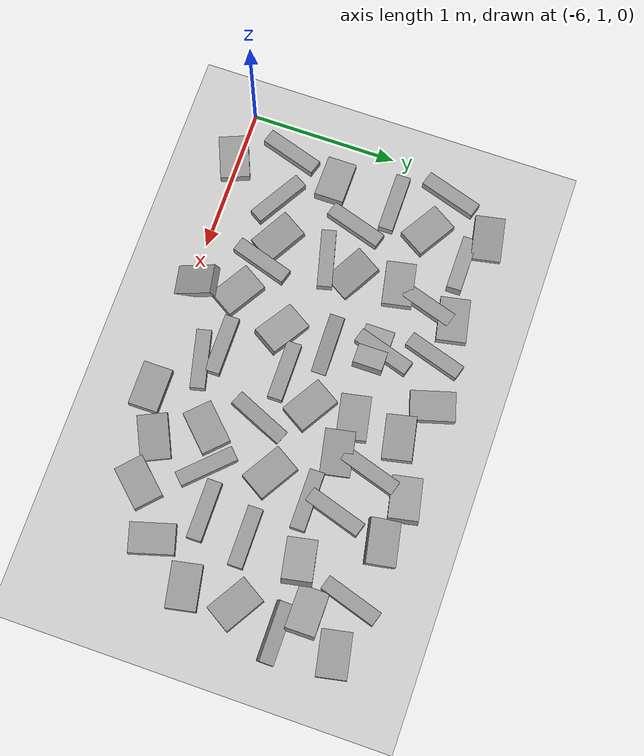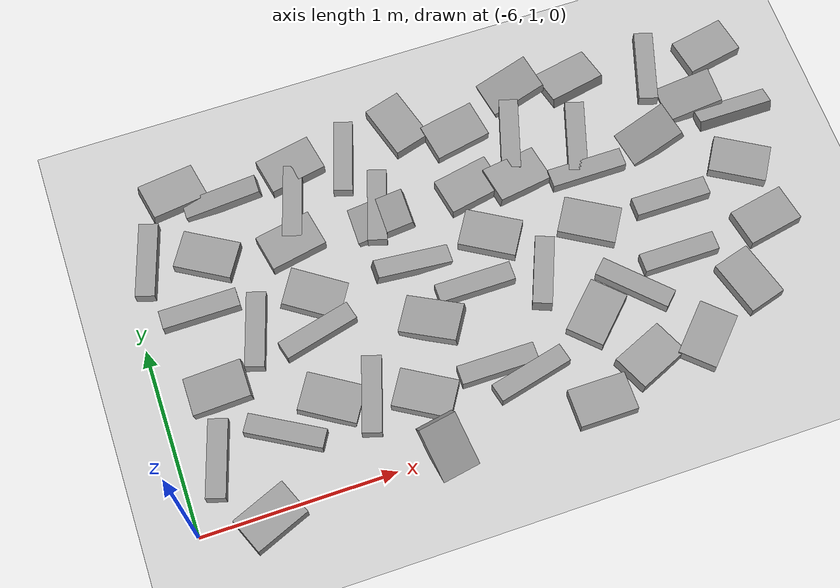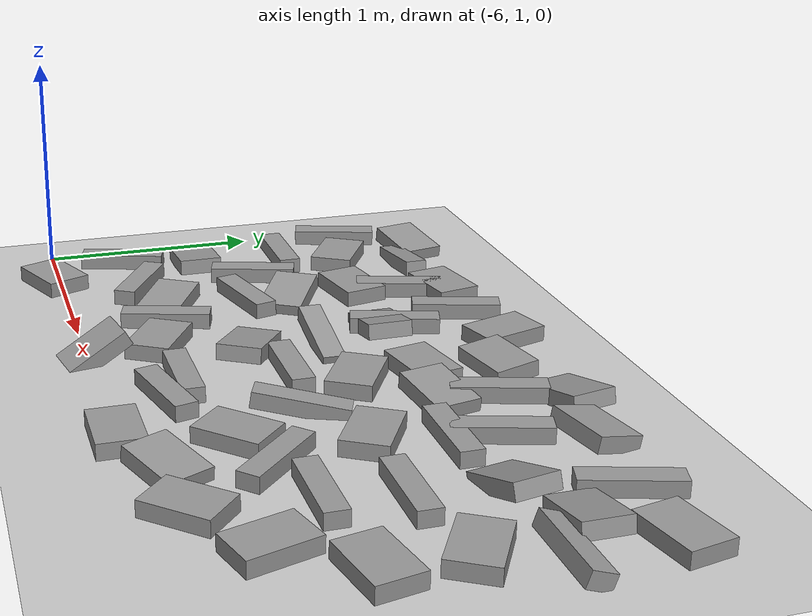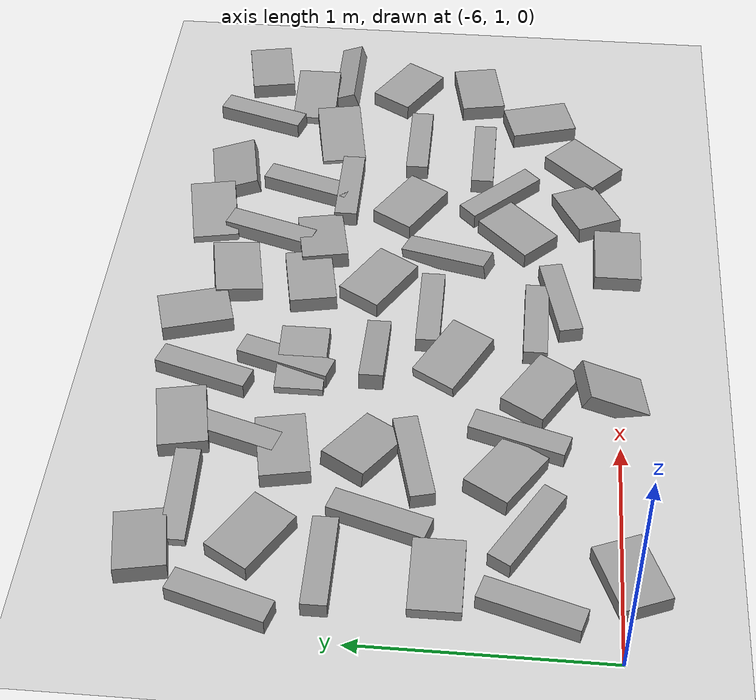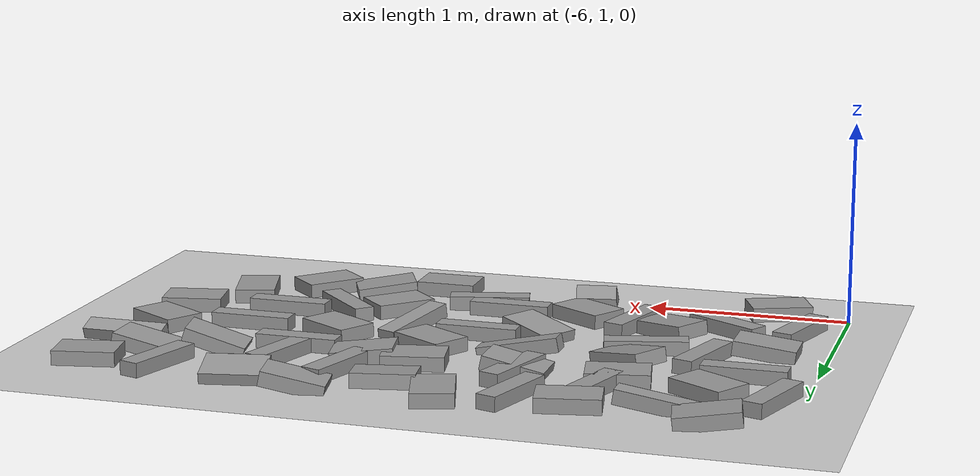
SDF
<sdf version="1.7">
 <world name="default">
  <model name="ground_plane">
   <static>1</static>
   <link name="link">
    <collision name="collision">
     <geometry><plane><normal>0 0 1</normal><size>100 100</size></plane></geometry>
     <surface><friction><ode><mu>200</mu><mu2>200</mu2></ode></friction></surface>
    </collision>
    <visual name="visual">
     <cast_shadows>0</cast_shadows>
     <geometry><plane><normal>0 0 1</normal><size>100 100</size></plane></geometry>
     <material>
      <script><uri>file://media/materials/scripts/gazebo.material</uri><name>Gazebo/Grey</name></script>
     </material>
    </visual>
   </link>
  </model>
  <model name="box_0.3_0.2_0.1">
   <pose>-3.01255 1.36536 0 0 -0 1.85347</pose>
   <link name="Stairs_9">
    <visual name="Stairs_9_Visual_0">
     <pose>0 0 0.035 0 -0 0</pose>
     <geometry><box><size>0.3 0.2 0.07</size></box></geometry>
     <material>
      <script><uri>file://media/materials/scripts/gazebo.material</uri><name>Gazebo/Grey</name></script>
      <ambient>1 1 1 1</ambient>
     </material>
     <meta><layer>0</layer></meta>
    </visual>
    <collision name="Stairs_9_Collision_0">
     <geometry><box><size>0.3 0.2 0.07</size></box></geometry>
     <pose>0 0 0.035 0 -0 0</pose>
     <surface><friction><ode><mu>200</mu><mu2>200</mu2></ode></friction></surface>
    </collision>
   </link>
   <static>1</static>
  </model>
  <model name="box_0.4_0.1_0.07_1">
   <pose>-4.22701 1.2491 0 0 -0 0.237517</pose>
   <link name="Stairs_14">
    <visual name="Stairs_14_Visual_0">
     <pose>0 0 0.035 0 -0 0</pose>
     <geometry><box><size>0.4 0.1 0.07</size></box></geometry>
     <material>
      <script><uri>file://media/materials/scripts/gazebo.material</uri><name>Gazebo/Grey</name></script>
      <ambient>1 1 1 1</ambient>
     </material>
     <meta><layer>0</layer></meta>
    </visual>
    <collision name="Stairs_14_Collision_0">
     <geometry><box><size>0.4 0.1 0.07</size></box></geometry>
     <pose>0 0 0.035 0 -0 0</pose>
     <surface><friction><ode><mu>200</mu><mu2>200</mu2></ode></friction></surface>
    </collision>
   </link>
   <static>1</static>
  </model>
  <model name="box_0.4_0.1_0.07_3">
   <pose>-5.15876 1.80575 0 0 -0 0.249675</pose>
   <link name="Stairs_14">
    <visual name="Stairs_14_Visual_0">
     <pose>0 0 0.035 0 -0 0</pose>
     <geometry><box><size>0.4 0.1 0.07</size></box></geometry>
     <material>
      <script><uri>file://media/materials/scripts/gazebo.material</uri><name>Gazebo/Grey</name></script>
      <ambient>1 1 1 1</ambient>
     </material>
     <meta><layer>0</layer></meta>
    </visual>
    <collision name="Stairs_14_Collision_0">
     <geometry><box><size>0.4 0.1 0.07</size></box></geometry>
     <pose>0 0 0.035 0 -0 0</pose>
     <surface><friction><ode><mu>200</mu><mu2>200</mu2></ode></friction></surface>
    </collision>
   </link>
   <static>1</static>
  </model>
  <model name="box_0.3_0.2_0.1_8">
   <pose>-4.59337 1.6807 0 -0 -0.139114 -0.545678</pose>
   <link name="Stairs_9">
    <visual name="Stairs_9_Visual_0">
     <pose>0 0 0.035 0 -0 0</pose>
     <geometry><box><size>0.3 0.2 0.07</size></box></geometry>
     <material>
      <script><uri>file://media/materials/scripts/gazebo.material</uri><name>Gazebo/Grey</name></script>
      <ambient>1 1 1 1</ambient>
     </material>
     <meta><layer>0</layer></meta>
    </visual>
    <collision name="Stairs_9_Collision_0">
     <geometry><box><size>0.3 0.2 0.07</size></box></geometry>
     <pose>0 0 0.035 0 -0 0</pose>
     <surface><friction><ode><mu>200</mu><mu2>200</mu2></ode></friction></surface>
    </collision>
   </link>
   <static>1</static>
  </model>
  <model name="box_0.3_0.2_0.1_9">
   <pose>-2.79379 1.66334 0 0 -0 0.193818</pose>
   <link name="Stairs_9">
    <visual name="Stairs_9_Visual_0">
     <pose>0 0 0.035 0 -0 0</pose>
     <geometry><box><size>0.3 0.2 0.07</size></box></geometry>
     <material>
      <script><uri>file://media/materials/scripts/gazebo.material</uri><name>Gazebo/Grey</name></script>
      <ambient>1 1 1 1</ambient>
     </material>
     <meta><layer>0</layer></meta>
    </visual>
    <collision name="Stairs_9_Collision_0">
     <geometry><box><size>0.3 0.2 0.07</size></box></geometry>
     <pose>0 0 0.035 0 -0 0</pose>
     <surface><friction><ode><mu>200</mu><mu2>200</mu2></ode></friction></surface>
    </collision>
   </link>
   <static>1</static>
  </model>
  <model name="box_0.4_0.1_0.07_12">
   <pose>-3.56494 1.53175 0 0 0 -0.796152</pose>
   <link name="Stairs_14">
    <visual name="Stairs_14_Visual_0">
     <pose>0 0 0.035 0 -0 0</pose>
     <geometry><box><size>0.4 0.1 0.07</size></box></geometry>
     <material>
      <script><uri>file://media/materials/scripts/gazebo.material</uri><name>Gazebo/Grey</name></script>
      <ambient>1 1 1 1</ambient>
     </material>
     <meta><layer>0</layer></meta>
    </visual>
    <collision name="Stairs_14_Collision_0">
     <geometry><box><size>0.4 0.1 0.07</size></box></geometry>
     <pose>0 0 0.035 0 -0 0</pose>
     <surface><friction><ode><mu>200</mu><mu2>200</mu2></ode></friction></surface>
    </collision>
   </link>
   <static>1</static>
  </model>
  <model name="box_0.3_0.2_0.1_15">
   <pose>-3.64159 1.14014 0 0 0.114836 0.429416</pose>
   <link name="Stairs_9">
    <visual name="Stairs_9_Visual_0">
     <pose>0 0 0.035 0 -0 0</pose>
     <geometry><box><size>0.3 0.2 0.07</size></box></geometry>
     <material>
      <script><uri>file://media/materials/scripts/gazebo.material</uri><name>Gazebo/Grey</name></script>
      <ambient>1 1 1 1</ambient>
     </material>
     <meta><layer>0</layer></meta>
    </visual>
    <collision name="Stairs_9_Collision_0">
     <geometry><box><size>0.3 0.2 0.07</size></box></geometry>
     <pose>0 0 0.035 0 -0 0</pose>
     <surface><friction><ode><mu>200</mu><mu2>200</mu2></ode></friction></surface>
    </collision>
   </link>
   <static>1</static>
  </model>
  <model name="box_0.4_0.1_0.07_19">
   <pose>-5.45893 1.35645 0 0 0 -0.532767</pose>
   <link name="Stairs_14">
    <visual name="Stairs_14_Visual_0">
     <pose>0 0 0.035 0 -0 0</pose>
     <geometry><box><size>0.4 0.1 0.07</size></box></geometry>
     <material>
      <script><uri>file://media/materials/scripts/gazebo.material</uri><name>Gazebo/Grey</name></script>
      <ambient>1 1 1 1</ambient>
     </material>
     <meta><layer>0</layer></meta>
    </visual>
    <collision name="Stairs_14_Collision_0">
     <geometry><box><size>0.4 0.1 0.07</size></box></geometry>
     <pose>0 0 0.035 0 -0 0</pose>
     <surface><friction><ode><mu>200</mu><mu2>200</mu2></ode></friction></surface>
    </collision>
   </link>
   <static>1</static>
  </model>
  <model name="box_0.3_0.2_0.1_21">
   <pose>-4.73627 1.04564 0 -0 0.500671 -1.39294</pose>
   <link name="Stairs_9">
    <visual name="Stairs_9_Visual_0">
     <pose>0 0 0.035 0 -0 0</pose>
     <geometry><box><size>0.3 0.2 0.07</size></box></geometry>
     <material>
      <script><uri>file://media/materials/scripts/gazebo.material</uri><name>Gazebo/Grey</name></script>
      <ambient>1 1 1 1</ambient>
     </material>
     <meta><layer>0</layer></meta>
    </visual>
    <collision name="Stairs_9_Collision_0">
     <geometry><box><size>0.3 0.2 0.07</size></box></geometry>
     <pose>0 0 0.035 0 -0 0</pose>
     <surface><friction><ode><mu>200</mu><mu2>200</mu2></ode></friction></surface>
    </collision>
   </link>
   <static>1</static>
  </model>
  <model name="box_0.4_0.1_0.07_20">
   <pose>-3.98209 1.73954 0 0 0.150582 1.18314</pose>
   <link name="Stairs_14">
    <visual name="Stairs_14_Visual_0">
     <pose>0 0 0.035 0 -0 0</pose>
     <geometry><box><size>0.4 0.1 0.07</size></box></geometry>
     <material>
      <script><uri>file://media/materials/scripts/gazebo.material</uri><name>Gazebo/Grey</name></script>
      <ambient>1 1 1 1</ambient>
     </material>
     <meta><layer>0</layer></meta>
    </visual>
    <collision name="Stairs_14_Collision_0">
     <geometry><box><size>0.4 0.1 0.07</size></box></geometry>
     <pose>0 0 0.035 0 -0 0</pose>
     <surface><friction><ode><mu>200</mu><mu2>200</mu2></ode></friction></surface>
    </collision>
   </link>
   <static>1</static>
  </model>
  <model name="box_0.3_0.2_0.1_22">
   <pose>-5.70698 1.67913 0 0 -0.108326 0</pose>
   <link name="Stairs_9">
    <visual name="Stairs_9_Visual_0">
     <pose>0 0 0.035 0 -0 0</pose>
     <geometry><box><size>0.3 0.2 0.07</size></box></geometry>
     <material>
      <script><uri>file://media/materials/scripts/gazebo.material</uri><name>Gazebo/Grey</name></script>
      <ambient>1 1 1 1</ambient>
     </material>
     <meta><layer>0</layer></meta>
    </visual>
    <collision name="Stairs_9_Collision_0">
     <geometry><box><size>0.3 0.2 0.07</size></box></geometry>
     <pose>0 0 0.035 0 -0 0</pose>
     <surface><friction><ode><mu>200</mu><mu2>200</mu2></ode></friction></surface>
    </collision>
   </link>
   <static>1</static>
  </model>
  <model name="box_0.3_0.2_0.1_23">
   <pose>-5.64621 0.971865 0 0 -0 0.388929</pose>
   <link name="Stairs_9">
    <visual name="Stairs_9_Visual_0">
     <pose>0 0 0.035 0 -0 0</pose>
     <geometry><box><size>0.3 0.2 0.07</size></box></geometry>
     <material>
      <script><uri>file://media/materials/scripts/gazebo.material</uri><name>Gazebo/Grey</name></script>
      <ambient>1 1 1 1</ambient>
     </material>
     <meta><layer>0</layer></meta>
    </visual>
    <collision name="Stairs_9_Collision_0">
     <geometry><box><size>0.3 0.2 0.07</size></box></geometry>
     <pose>0 0 0.035 0 -0 0</pose>
     <surface><friction><ode><mu>200</mu><mu2>200</mu2></ode></friction></surface>
    </collision>
   </link>
   <static>1</static>
  </model>
  <model name="box_0.4_0.1_0.07_25">
   <pose>-3.29164 1.61754 0 0 -0 0</pose>
   <link name="Stairs_14">
    <visual name="Stairs_14_Visual_0">
     <pose>0 0 0.035 0 -0 0</pose>
     <geometry><box><size>0.4 0.1 0.07</size></box></geometry>
     <material>
      <script><uri>file://media/materials/scripts/gazebo.material</uri><name>Gazebo/Grey</name></script>
      <ambient>1 1 1 1</ambient>
     </material>
     <meta><layer>0</layer></meta>
    </visual>
    <collision name="Stairs_14_Collision_0">
     <geometry><box><size>0.4 0.1 0.07</size></box></geometry>
     <pose>0 0 0.035 0 -0 0</pose>
     <surface><friction><ode><mu>200</mu><mu2>200</mu2></ode></friction></surface>
    </collision>
   </link>
   <static>1</static>
  </model>
  <model name="box_0.4_0.1_0.07_28">
   <pose>-5.00471 1.39941 0 0 -0 1.2714</pose>
   <link name="Stairs_14">
    <visual name="Stairs_14_Visual_0">
     <pose>0 0 0.035 0 -0 0</pose>
     <geometry><box><size>0.4 0.1 0.07</size></box></geometry>
     <material>
      <script><uri>file://media/materials/scripts/gazebo.material</uri><name>Gazebo/Grey</name></script>
      <ambient>1 1 1 1</ambient>
     </material>
     <meta><layer>0</layer></meta>
    </visual>
    <collision name="Stairs_14_Collision_0">
     <geometry><box><size>0.4 0.1 0.07</size></box></geometry>
     <pose>0 0 0.035 0 -0 0</pose>
     <surface><friction><ode><mu>200</mu><mu2>200</mu2></ode></friction></surface>
    </collision>
   </link>
   <static>1</static>
  </model>
  <model name="box_0.3_0.2_0.1_32">
   <pose>-3.94269 1.00447 0 0 -0 0</pose>
   <link name="Stairs_9">
    <visual name="Stairs_9_Visual_0">
     <pose>0 0 0.035 0 -0 0</pose>
     <geometry><box><size>0.3 0.2 0.07</size></box></geometry>
     <material>
      <script><uri>file://media/materials/scripts/gazebo.material</uri><name>Gazebo/Grey</name></script>
      <ambient>1 1 1 1</ambient>
     </material>
     <meta><layer>0</layer></meta>
    </visual>
    <collision name="Stairs_9_Collision_0">
     <geometry><box><size>0.3 0.2 0.07</size></box></geometry>
     <pose>0 0 0.035 0 -0 0</pose>
     <surface><friction><ode><mu>200</mu><mu2>200</mu2></ode></friction></surface>
    </collision>
   </link>
   <static>1</static>
  </model>
  <model name="box_0.3_0.2_0.1_40">
   <pose>-3.80623 1.44414 0 0 -0 0.786502</pose>
   <link name="Stairs_9">
    <visual name="Stairs_9_Visual_0">
     <pose>0 0 0.035 0 -0 0</pose>
     <geometry><box><size>0.3 0.2 0.07</size></box></geometry>
     <material>
      <script><uri>file://media/materials/scripts/gazebo.material</uri><name>Gazebo/Grey</name></script>
      <ambient>1 1 1 1</ambient>
     </material>
     <meta><layer>0</layer></meta>
    </visual>
    <collision name="Stairs_9_Collision_0">
     <geometry><box><size>0.3 0.2 0.07</size></box></geometry>
     <pose>0 0 0.035 0 -0 0</pose>
     <surface><friction><ode><mu>200</mu><mu2>200</mu2></ode></friction></surface>
    </collision>
   </link>
   <static>1</static>
  </model>
  <model name="box_0.3_0.2_0.1_41">
   <pose>-3.32408 1.15403 0 0 -0 0.81582</pose>
   <link name="Stairs_9">
    <visual name="Stairs_9_Visual_0">
     <pose>0 0 0.035 0 -0 0</pose>
     <geometry><box><size>0.3 0.2 0.07</size></box></geometry>
     <material>
      <script><uri>file://media/materials/scripts/gazebo.material</uri><name>Gazebo/Grey</name></script>
      <ambient>1 1 1 1</ambient>
     </material>
     <meta><layer>0</layer></meta>
    </visual>
    <collision name="Stairs_9_Collision_0">
     <geometry><box><size>0.3 0.2 0.07</size></box></geometry>
     <pose>0 0 0.035 0 -0 0</pose>
     <surface><friction><ode><mu>200</mu><mu2>200</mu2></ode></friction></surface>
    </collision>
   </link>
   <static>1</static>
  </model>
  <model name="box_0.4_0.1_0.07_38">
   <pose>-4.36607 1.34865 0 0 -0 0</pose>
   <link name="Stairs_14">
    <visual name="Stairs_14_Visual_0">
     <pose>0 0 0.035 0 -0 0</pose>
     <geometry><box><size>0.4 0.1 0.07</size></box></geometry>
     <material>
      <script><uri>file://media/materials/scripts/gazebo.material</uri><name>Gazebo/Grey</name></script>
      <ambient>1 1 1 1</ambient>
     </material>
     <meta><layer>0</layer></meta>
    </visual>
    <collision name="Stairs_14_Collision_0">
     <geometry><box><size>0.4 0.1 0.07</size></box></geometry>
     <pose>0 0 0.035 0 -0 0</pose>
     <surface><friction><ode><mu>200</mu><mu2>200</mu2></ode></friction></surface>
    </collision>
   </link>
   <static>1</static>
  </model>
  <model name="box_0.4_0.1_0.07_41">
   <pose>-3.21523 1.9236 0 0 -0 0</pose>
   <link name="Stairs_14">
    <visual name="Stairs_14_Visual_0">
     <pose>0 0 0.035 0 -0 0</pose>
     <geometry><box><size>0.4 0.1 0.07</size></box></geometry>
     <material>
      <script><uri>file://media/materials/scripts/gazebo.material</uri><name>Gazebo/Grey</name></script>
      <ambient>1 1 1 1</ambient>
     </material>
     <meta><layer>0</layer></meta>
    </visual>
    <collision name="Stairs_14_Collision_0">
     <geometry><box><size>0.4 0.1 0.07</size></box></geometry>
     <pose>0 0 0.035 0 -0 0</pose>
     <surface><friction><ode><mu>200</mu><mu2>200</mu2></ode></friction></surface>
    </collision>
   </link>
   <static>1</static>
  </model>
  <model name="box_0.4_0.1_0.07_42">
   <pose>-4.3306 1.79701 0 0 -0 0</pose>
   <link name="Stairs_14">
    <visual name="Stairs_14_Visual_0">
     <pose>0 0 0.035 0 -0 0</pose>
     <geometry><box><size>0.4 0.1 0.07</size></box></geometry>
     <material>
      <script><uri>file://media/materials/scripts/gazebo.material</uri><name>Gazebo/Grey</name></script>
      <ambient>1 1 1 1</ambient>
     </material>
     <meta><layer>0</layer></meta>
    </visual>
    <collision name="Stairs_14_Collision_0">
     <geometry><box><size>0.4 0.1 0.07</size></box></geometry>
     <pose>0 0 0.035 0 -0 0</pose>
     <surface><friction><ode><mu>200</mu><mu2>200</mu2></ode></friction></surface>
    </collision>
   </link>
   <static>1</static>
  </model>
  <model name="box_0.3_0.2_0.1_8_clone">
   <pose>-4.75404 1.31901 0 0 0 -0.545678</pose>
   <link name="Stairs_9">
    <visual name="Stairs_9_Visual_0">
     <pose>0 0 0.035 0 -0 0</pose>
     <geometry><box><size>0.3 0.2 0.07</size></box></geometry>
     <material>
      <script><uri>file://media/materials/scripts/gazebo.material</uri><name>Gazebo/Grey</name></script>
      <ambient>1 1 1 1</ambient>
     </material>
     <meta><layer>0</layer></meta>
    </visual>
    <collision name="Stairs_9_Collision_0">
     <geometry><box><size>0.3 0.2 0.07</size></box></geometry>
     <pose>0 0 0.035 0 -0 0</pose>
     <surface><friction><ode><mu>200</mu><mu2>200</mu2></ode></friction></surface>
    </collision>
   </link>
   <static>1</static>
  </model>
  <model name="box_0.3_0.2_0.1_9_clone_0">
   <pose>-2.70235 2.69599 0 0 -0 0.193818</pose>
   <link name="Stairs_9">
    <visual name="Stairs_9_Visual_0">
     <pose>0 0 0.035 0 -0 0</pose>
     <geometry><box><size>0.3 0.2 0.07</size></box></geometry>
     <material>
      <script><uri>file://media/materials/scripts/gazebo.material</uri><name>Gazebo/Grey</name></script>
      <ambient>1 1 1 1</ambient>
     </material>
     <meta><layer>0</layer></meta>
    </visual>
    <collision name="Stairs_9_Collision_0">
     <geometry><box><size>0.3 0.2 0.07</size></box></geometry>
     <pose>0 0 0.035 0 -0 0</pose>
     <surface><friction><ode><mu>200</mu><mu2>200</mu2></ode></friction></surface>
    </collision>
   </link>
   <static>1</static>
  </model>
  <model name="box_0.3_0.2_0.1_9_clone_1">
   <pose>-3.17232 2.30182 0 0 -0.321007 0.193818</pose>
   <link name="Stairs_9">
    <visual name="Stairs_9_Visual_0">
     <pose>0 0 0.035 0 -0 0</pose>
     <geometry><box><size>0.3 0.2 0.07</size></box></geometry>
     <material>
      <script><uri>file://media/materials/scripts/gazebo.material</uri><name>Gazebo/Grey</name></script>
      <ambient>1 1 1 1</ambient>
     </material>
     <meta><layer>0</layer></meta>
    </visual>
    <collision name="Stairs_9_Collision_0">
     <geometry><box><size>0.3 0.2 0.07</size></box></geometry>
     <pose>0 0 0.035 0 -0 0</pose>
     <surface><friction><ode><mu>200</mu><mu2>200</mu2></ode></friction></surface>
    </collision>
   </link>
   <static>1</static>
  </model>
  <model name="box_0.3_0.2_0.1_9_clone_2">
   <pose>-3.46635 2.75271 0 -0.201979 -0 0.193818</pose>
   <link name="Stairs_9">
    <visual name="Stairs_9_Visual_0">
     <pose>0 0 0.035 0 -0 0</pose>
     <geometry><box><size>0.3 0.2 0.07</size></box></geometry>
     <material>
      <script><uri>file://media/materials/scripts/gazebo.material</uri><name>Gazebo/Grey</name></script>
      <ambient>1 1 1 1</ambient>
     </material>
     <meta><layer>0</layer></meta>
    </visual>
    <collision name="Stairs_9_Collision_0">
     <geometry><box><size>0.3 0.2 0.07</size></box></geometry>
     <pose>0 0 0.035 0 -0 0</pose>
     <surface><friction><ode><mu>200</mu><mu2>200</mu2></ode></friction></surface>
    </collision>
   </link>
   <static>1</static>
  </model>
  <model name="box_0.3_0.2_0.1_9_clone_3">
   <pose>-3.77104 2.81261 0 0 -0.21249 0.193818</pose>
   <link name="Stairs_9">
    <visual name="Stairs_9_Visual_0">
     <pose>0 0 0.035 0 -0 0</pose>
     <geometry><box><size>0.3 0.2 0.07</size></box></geometry>
     <material>
      <script><uri>file://media/materials/scripts/gazebo.material</uri><name>Gazebo/Grey</name></script>
      <ambient>1 1 1 1</ambient>
     </material>
     <meta><layer>0</layer></meta>
    </visual>
    <collision name="Stairs_9_Collision_0">
     <geometry><box><size>0.3 0.2 0.07</size></box></geometry>
     <pose>0 0 0.035 0 -0 0</pose>
     <surface><friction><ode><mu>200</mu><mu2>200</mu2></ode></friction></surface>
    </collision>
   </link>
   <static>1</static>
  </model>
  <model name="box_0.3_0.2_0.1_9_clone_4">
   <pose>-3.93072 2.30176 0 -0 0.10704 0.193818</pose>
   <link name="Stairs_9">
    <visual name="Stairs_9_Visual_0">
     <pose>0 0 0.035 0 -0 0</pose>
     <geometry><box><size>0.3 0.2 0.07</size></box></geometry>
     <material>
      <script><uri>file://media/materials/scripts/gazebo.material</uri><name>Gazebo/Grey</name></script>
      <ambient>1 1 1 1</ambient>
     </material>
     <meta><layer>0</layer></meta>
    </visual>
    <collision name="Stairs_9_Collision_0">
     <geometry><box><size>0.3 0.2 0.07</size></box></geometry>
     <pose>0 0 0.035 0 -0 0</pose>
     <surface><friction><ode><mu>200</mu><mu2>200</mu2></ode></friction></surface>
    </collision>
   </link>
   <static>1</static>
  </model>
  <model name="box_0.3_0.2_0.1_9_clone_5">
   <pose>-4.18129 2.3259 0 0 -0 0.193818</pose>
   <link name="Stairs_9">
    <visual name="Stairs_9_Visual_0">
     <pose>0 0 0.035 0 -0 0</pose>
     <geometry><box><size>0.3 0.2 0.07</size></box></geometry>
     <material>
      <script><uri>file://media/materials/scripts/gazebo.material</uri><name>Gazebo/Grey</name></script>
      <ambient>1 1 1 1</ambient>
     </material>
     <meta><layer>0</layer></meta>
    </visual>
    <collision name="Stairs_9_Collision_0">
     <geometry><box><size>0.3 0.2 0.07</size></box></geometry>
     <pose>0 0 0.035 0 -0 0</pose>
     <surface><friction><ode><mu>200</mu><mu2>200</mu2></ode></friction></surface>
    </collision>
   </link>
   <static>1</static>
  </model>
  <model name="box_0.3_0.2_0.1_9_clone_6">
   <pose>-4.15008 2.65356 0 0.084754 0 0.193818</pose>
   <link name="Stairs_9">
    <visual name="Stairs_9_Visual_0">
     <pose>0 0 0.035 0 -0 0</pose>
     <geometry><box><size>0.3 0.2 0.07</size></box></geometry>
     <material>
      <script><uri>file://media/materials/scripts/gazebo.material</uri><name>Gazebo/Grey</name></script>
      <ambient>1 1 1 1</ambient>
     </material>
     <meta><layer>0</layer></meta>
    </visual>
    <collision name="Stairs_9_Collision_0">
     <geometry><box><size>0.3 0.2 0.07</size></box></geometry>
     <pose>0 0 0.035 0 -0 0</pose>
     <surface><friction><ode><mu>200</mu><mu2>200</mu2></ode></friction></surface>
    </collision>
   </link>
   <static>1</static>
  </model>
  <model name="box_0.3_0.2_0.1_9_clone_7">
   <pose>-5.14536 2.32027 0 0 -0 0.193818</pose>
   <link name="Stairs_9">
    <visual name="Stairs_9_Visual_0">
     <pose>0 0 0.035 0 -0 0</pose>
     <geometry><box><size>0.3 0.2 0.07</size></box></geometry>
     <material>
      <script><uri>file://media/materials/scripts/gazebo.material</uri><name>Gazebo/Grey</name></script>
      <ambient>1 1 1 1</ambient>
     </material>
     <meta><layer>0</layer></meta>
    </visual>
    <collision name="Stairs_9_Collision_0">
     <geometry><box><size>0.3 0.2 0.07</size></box></geometry>
     <pose>0 0 0.035 0 -0 0</pose>
     <surface><friction><ode><mu>200</mu><mu2>200</mu2></ode></friction></surface>
    </collision>
   </link>
   <static>1</static>
  </model>
  <model name="box_0.3_0.2_0.1_9_clone_8">
   <pose>-5.65117 2.78452 0 0 0.127228 0.193818</pose>
   <link name="Stairs_9">
    <visual name="Stairs_9_Visual_0">
     <pose>0 0 0.035 0 -0 0</pose>
     <geometry><box><size>0.3 0.2 0.07</size></box></geometry>
     <material>
      <script><uri>file://media/materials/scripts/gazebo.material</uri><name>Gazebo/Grey</name></script>
      <ambient>1 1 1 1</ambient>
     </material>
     <meta><layer>0</layer></meta>
    </visual>
    <collision name="Stairs_9_Collision_0">
     <geometry><box><size>0.3 0.2 0.07</size></box></geometry>
     <pose>0 0 0.035 0 -0 0</pose>
     <surface><friction><ode><mu>200</mu><mu2>200</mu2></ode></friction></surface>
    </collision>
   </link>
   <static>1</static>
  </model>
  <model name="box_0.3_0.2_0.1_9_clone_9">
   <pose>-5.0247 2.73794 0 0 -0 0.193818</pose>
   <link name="Stairs_9">
    <visual name="Stairs_9_Visual_0">
     <pose>0 0 0.035 0 -0 0</pose>
     <geometry><box><size>0.3 0.2 0.07</size></box></geometry>
     <material>
      <script><uri>file://media/materials/scripts/gazebo.material</uri><name>Gazebo/Grey</name></script>
      <ambient>1 1 1 1</ambient>
     </material>
     <meta><layer>0</layer></meta>
    </visual>
    <collision name="Stairs_9_Collision_0">
     <geometry><box><size>0.3 0.2 0.07</size></box></geometry>
     <pose>0 0 0.035 0 -0 0</pose>
     <surface><friction><ode><mu>200</mu><mu2>200</mu2></ode></friction></surface>
    </collision>
   </link>
   <static>1</static>
  </model>
  <model name="box_0.4_0.1_0.07_28_clone">
   <pose>-4.66639 2.37013 0 0 -0 1.2714</pose>
   <link name="Stairs_14">
    <visual name="Stairs_14_Visual_0">
     <pose>0 0 0.035 0 -0 0</pose>
     <geometry><box><size>0.4 0.1 0.07</size></box></geometry>
     <material>
      <script><uri>file://media/materials/scripts/gazebo.material</uri><name>Gazebo/Grey</name></script>
      <ambient>1 1 1 1</ambient>
     </material>
     <meta><layer>0</layer></meta>
    </visual>
    <collision name="Stairs_14_Collision_0">
     <geometry><box><size>0.4 0.1 0.07</size></box></geometry>
     <pose>0 0 0.035 0 -0 0</pose>
     <surface><friction><ode><mu>200</mu><mu2>200</mu2></ode></friction></surface>
    </collision>
   </link>
   <static>1</static>
  </model>
  <model name="box_0.4_0.1_0.07_28_clone_0">
   <pose>-4.74921 2.69609 0 0 -0 1.2714</pose>
   <link name="Stairs_14">
    <visual name="Stairs_14_Visual_0">
     <pose>0 0 0.035 0 -0 0</pose>
     <geometry><box><size>0.4 0.1 0.07</size></box></geometry>
     <material>
      <script><uri>file://media/materials/scripts/gazebo.material</uri><name>Gazebo/Grey</name></script>
      <ambient>1 1 1 1</ambient>
     </material>
     <meta><layer>0</layer></meta>
    </visual>
    <collision name="Stairs_14_Collision_0">
     <geometry><box><size>0.4 0.1 0.07</size></box></geometry>
     <pose>0 0 0.035 0 -0 0</pose>
     <surface><friction><ode><mu>200</mu><mu2>200</mu2></ode></friction></surface>
    </collision>
   </link>
   <static>1</static>
  </model>
  <model name="box_0.4_0.1_0.07_28_clone_1">
   <pose>-3.5532 2.41158 0 0 -0 1.2714</pose>
   <link name="Stairs_14">
    <visual name="Stairs_14_Visual_0">
     <pose>0 0 0.035 0 -0 0</pose>
     <geometry><box><size>0.4 0.1 0.07</size></box></geometry>
     <material>
      <script><uri>file://media/materials/scripts/gazebo.material</uri><name>Gazebo/Grey</name></script>
      <ambient>1 1 1 1</ambient>
     </material>
     <meta><layer>0</layer></meta>
    </visual>
    <collision name="Stairs_14_Collision_0">
     <geometry><box><size>0.4 0.1 0.07</size></box></geometry>
     <pose>0 0 0.035 0 -0 0</pose>
     <surface><friction><ode><mu>200</mu><mu2>200</mu2></ode></friction></surface>
    </collision>
   </link>
   <static>1</static>
  </model>
  <model name="box_0.4_0.1_0.07_28_clone_2">
   <pose>-3.05202 2.68853 0 0 -0 1.2714</pose>
   <link name="Stairs_14">
    <visual name="Stairs_14_Visual_0">
     <pose>0 0 0.035 0 -0 0</pose>
     <geometry><box><size>0.4 0.1 0.07</size></box></geometry>
     <material>
      <script><uri>file://media/materials/scripts/gazebo.material</uri><name>Gazebo/Grey</name></script>
      <ambient>1 1 1 1</ambient>
     </material>
     <meta><layer>0</layer></meta>
    </visual>
    <collision name="Stairs_14_Collision_0">
     <geometry><box><size>0.4 0.1 0.07</size></box></geometry>
     <pose>0 0 0.035 0 -0 0</pose>
     <surface><friction><ode><mu>200</mu><mu2>200</mu2></ode></friction></surface>
    </collision>
   </link>
   <static>1</static>
  </model>
  <model name="box_0.4_0.1_0.07_36_clone">
   <pose>-2.70922 2.29202 0 -0.328405 0 0</pose>
   <link name="Stairs_14">
    <visual name="Stairs_14_Visual_0">
     <pose>0 0 0.035 0 -0 0</pose>
     <geometry><box><size>0.4 0.1 0.07</size></box></geometry>
     <material>
      <script><uri>file://media/materials/scripts/gazebo.material</uri><name>Gazebo/Grey</name></script>
      <ambient>1 1 1 1</ambient>
     </material>
     <meta><layer>0</layer></meta>
    </visual>
    <collision name="Stairs_14_Collision_0">
     <geometry><box><size>0.4 0.1 0.07</size></box></geometry>
     <pose>0 0 0.035 0 -0 0</pose>
     <surface><friction><ode><mu>200</mu><mu2>200</mu2></ode></friction></surface>
    </collision>
   </link>
   <static>1</static>
  </model>
  <model name="box_0.4_0.1_0.07_36_clone_1">
   <pose>-3.56785 2.21887 0 0 -0 0</pose>
   <link name="Stairs_14">
    <visual name="Stairs_14_Visual_0">
     <pose>0 0 0.035 0 -0 0</pose>
     <geometry><box><size>0.4 0.1 0.07</size></box></geometry>
     <material>
      <script><uri>file://media/materials/scripts/gazebo.material</uri><name>Gazebo/Grey</name></script>
      <ambient>1 1 1 1</ambient>
     </material>
     <meta><layer>0</layer></meta>
    </visual>
    <collision name="Stairs_14_Collision_0">
     <geometry><box><size>0.4 0.1 0.07</size></box></geometry>
     <pose>0 0 0.035 0 -0 0</pose>
     <surface><friction><ode><mu>200</mu><mu2>200</mu2></ode></friction></surface>
    </collision>
   </link>
   <static>1</static>
  </model>
  <model name="box_0.4_0.1_0.07_36_clone_2">
   <pose>-4.6043 2.00787 0 0 0.205419 0</pose>
   <link name="Stairs_14">
    <visual name="Stairs_14_Visual_0">
     <pose>0 0 0.035 0 -0 0</pose>
     <geometry><box><size>0.4 0.1 0.07</size></box></geometry>
     <material>
      <script><uri>file://media/materials/scripts/gazebo.material</uri><name>Gazebo/Grey</name></script>
      <ambient>1 1 1 1</ambient>
     </material>
     <meta><layer>0</layer></meta>
    </visual>
    <collision name="Stairs_14_Collision_0">
     <geometry><box><size>0.4 0.1 0.07</size></box></geometry>
     <pose>0 0 0.035 0 -0 0</pose>
     <surface><friction><ode><mu>200</mu><mu2>200</mu2></ode></friction></surface>
    </collision>
   </link>
   <static>1</static>
  </model>
  <model name="box_0.4_0.1_0.07_36_clone_3">
   <pose>-5.4091 2.67465 0 0 -0.144292 0</pose>
   <link name="Stairs_14">
    <visual name="Stairs_14_Visual_0">
     <pose>0 0 0.035 0 -0 0</pose>
     <geometry><box><size>0.4 0.1 0.07</size></box></geometry>
     <material>
      <script><uri>file://media/materials/scripts/gazebo.material</uri><name>Gazebo/Grey</name></script>
      <ambient>1 1 1 1</ambient>
     </material>
     <meta><layer>0</layer></meta>
    </visual>
    <collision name="Stairs_14_Collision_0">
     <geometry><box><size>0.4 0.1 0.07</size></box></geometry>
     <pose>0 0 0.035 0 -0 0</pose>
     <surface><friction><ode><mu>200</mu><mu2>200</mu2></ode></friction></surface>
    </collision>
   </link>
   <static>1</static>
  </model>
  <model name="box_0.4_0.1_0.07_36_clone_4">
   <pose>-5.68526 2.1106 0 0 -0 0</pose>
   <link name="Stairs_14">
    <visual name="Stairs_14_Visual_0">
     <pose>0 0 0.035 0 -0 0</pose>
     <geometry><box><size>0.4 0.1 0.07</size></box></geometry>
     <material>
      <script><uri>file://media/materials/scripts/gazebo.material</uri><name>Gazebo/Grey</name></script>
      <ambient>1 1 1 1</ambient>
     </material>
     <meta><layer>0</layer></meta>
    </visual>
    <collision name="Stairs_14_Collision_0">
     <geometry><box><size>0.4 0.1 0.07</size></box></geometry>
     <pose>0 0 0.035 0 -0 0</pose>
     <surface><friction><ode><mu>200</mu><mu2>200</mu2></ode></friction></surface>
    </collision>
   </link>
   <static>1</static>
  </model>
  <model name="box_0.3_0.2_0.1_8_clone_clone">
   <pose>-5.57052 2.38324 0 0 0 -0.545678</pose>
   <link name="Stairs_9">
    <visual name="Stairs_9_Visual_0">
     <pose>0 0 0.035 0 -0 0</pose>
     <geometry><box><size>0.3 0.2 0.07</size></box></geometry>
     <material>
      <script><uri>file://media/materials/scripts/gazebo.material</uri><name>Gazebo/Grey</name></script>
      <ambient>1 1 1 1</ambient>
     </material>
     <meta><layer>0</layer></meta>
    </visual>
    <collision name="Stairs_9_Collision_0">
     <geometry><box><size>0.3 0.2 0.07</size></box></geometry>
     <pose>0 0 0.035 0 -0 0</pose>
     <surface><friction><ode><mu>200</mu><mu2>200</mu2></ode></friction></surface>
    </collision>
   </link>
   <static>1</static>
  </model>
  <model name="box_0.3_0.2_0.1_8_clone_clone_0">
   <pose>-5.12123 2.00559 0 0 0.166537 -0.545678</pose>
   <link name="Stairs_9">
    <visual name="Stairs_9_Visual_0">
     <pose>0 0 0.035 0 -0 0</pose>
     <geometry><box><size>0.3 0.2 0.07</size></box></geometry>
     <material>
      <script><uri>file://media/materials/scripts/gazebo.material</uri><name>Gazebo/Grey</name></script>
      <ambient>1 1 1 1</ambient>
     </material>
     <meta><layer>0</layer></meta>
    </visual>
    <collision name="Stairs_9_Collision_0">
     <geometry><box><size>0.3 0.2 0.07</size></box></geometry>
     <pose>0 0 0.035 0 -0 0</pose>
     <surface><friction><ode><mu>200</mu><mu2>200</mu2></ode></friction></surface>
    </collision>
   </link>
   <static>1</static>
  </model>
  <model name="box_0.3_0.2_0.1_8_clone_clone_1">
   <pose>-5.20016 1.44756 0 0 0.083953 -0.545678</pose>
   <link name="Stairs_9">
    <visual name="Stairs_9_Visual_0">
     <pose>0 0 0.035 0 -0 0</pose>
     <geometry><box><size>0.3 0.2 0.07</size></box></geometry>
     <material>
      <script><uri>file://media/materials/scripts/gazebo.material</uri><name>Gazebo/Grey</name></script>
      <ambient>1 1 1 1</ambient>
     </material>
     <meta><layer>0</layer></meta>
    </visual>
    <collision name="Stairs_9_Collision_0">
     <geometry><box><size>0.3 0.2 0.07</size></box></geometry>
     <pose>0 0 0.035 0 -0 0</pose>
     <surface><friction><ode><mu>200</mu><mu2>200</mu2></ode></friction></surface>
    </collision>
   </link>
   <static>1</static>
  </model>
  <model name="box_0.3_0.2_0.1_8_clone_clone_2">
   <pose>-3.65974 1.93273 0 0 0 -0.545678</pose>
   <link name="Stairs_9">
    <visual name="Stairs_9_Visual_0">
     <pose>0 0 0.035 0 -0 0</pose>
     <geometry><box><size>0.3 0.2 0.07</size></box></geometry>
     <material>
      <script><uri>file://media/materials/scripts/gazebo.material</uri><name>Gazebo/Grey</name></script>
      <ambient>1 1 1 1</ambient>
     </material>
     <meta><layer>0</layer></meta>
    </visual>
    <collision name="Stairs_9_Collision_0">
     <geometry><box><size>0.3 0.2 0.07</size></box></geometry>
     <pose>0 0 0.035 0 -0 0</pose>
     <surface><friction><ode><mu>200</mu><mu2>200</mu2></ode></friction></surface>
    </collision>
   </link>
   <static>1</static>
  </model>
  <model name="box_0.3_0.2_0.1_8_clone_clone_3">
   <pose>-2.7935 2.00782 0 0 0 -0.545678</pose>
   <link name="Stairs_9">
    <visual name="Stairs_9_Visual_0">
     <pose>0 0 0.035 0 -0 0</pose>
     <geometry><box><size>0.3 0.2 0.07</size></box></geometry>
     <material>
      <script><uri>file://media/materials/scripts/gazebo.material</uri><name>Gazebo/Grey</name></script>
      <ambient>1 1 1 1</ambient>
     </material>
     <meta><layer>0</layer></meta>
    </visual>
    <collision name="Stairs_9_Collision_0">
     <geometry><box><size>0.3 0.2 0.07</size></box></geometry>
     <pose>0 0 0.035 0 -0 0</pose>
     <surface><friction><ode><mu>200</mu><mu2>200</mu2></ode></friction></surface>
    </collision>
   </link>
   <static>1</static>
  </model>
  <model name="box_0.3_0.2_0.1_26_clone">
   <pose>-2.89032 2.44841 0 0 -0.200079 0</pose>
   <link name="Stairs_9">
    <visual name="Stairs_9_Visual_0">
     <pose>0 0 0.035 0 -0 0</pose>
     <geometry><box><size>0.3 0.2 0.07</size></box></geometry>
     <material>
      <script><uri>file://media/materials/scripts/gazebo.material</uri><name>Gazebo/Grey</name></script>
      <ambient>1 1 1 1</ambient>
     </material>
     <meta><layer>0</layer></meta>
    </visual>
    <collision name="Stairs_9_Collision_0">
     <geometry><box><size>0.3 0.2 0.07</size></box></geometry>
     <pose>0 0 0.035 0 -0 0</pose>
     <surface><friction><ode><mu>200</mu><mu2>200</mu2></ode></friction></surface>
    </collision>
   </link>
   <static>1</static>
  </model>
  <model name="box_0.3_0.2_0.1_26_clone_0">
   <pose>-4.65956 2.30086 0 0 -0.200079 0</pose>
   <link name="Stairs_9">
    <visual name="Stairs_9_Visual_0">
     <pose>0 0 0.035 0 -0 0</pose>
     <geometry><box><size>0.3 0.2 0.07</size></box></geometry>
     <material>
      <script><uri>file://media/materials/scripts/gazebo.material</uri><name>Gazebo/Grey</name></script>
      <ambient>1 1 1 1</ambient>
     </material>
     <meta><layer>0</layer></meta>
    </visual>
    <collision name="Stairs_9_Collision_0">
     <geometry><box><size>0.3 0.2 0.07</size></box></geometry>
     <pose>0 0 0.035 0 -0 0</pose>
     <surface><friction><ode><mu>200</mu><mu2>200</mu2></ode></friction></surface>
    </collision>
   </link>
   <static>1</static>
  </model>
  <model name="box_0.4_0.1_0.07_28_clone_3">
   <pose>-3.87914 2.53951 0 0 -0 1.2714</pose>
   <link name="Stairs_14">
    <visual name="Stairs_14_Visual_0">
     <pose>0 0 0.035 0 -0 0</pose>
     <geometry><box><size>0.4 0.1 0.07</size></box></geometry>
     <material>
      <script><uri>file://media/materials/scripts/gazebo.material</uri><name>Gazebo/Grey</name></script>
      <ambient>1 1 1 1</ambient>
     </material>
     <meta><layer>0</layer></meta>
    </visual>
    <collision name="Stairs_14_Collision_0">
     <geometry><box><size>0.4 0.1 0.07</size></box></geometry>
     <pose>0 0 0.035 0 -0 0</pose>
     <surface><friction><ode><mu>200</mu><mu2>200</mu2></ode></friction></surface>
    </collision>
   </link>
   <static>1</static>
  </model>
  <model name="box_0.3_0.2_0.1_clone">
   <pose>-4.42027 2.78935 0 0 -0 1.85347</pose>
   <link name="Stairs_9">
    <visual name="Stairs_9_Visual_0">
     <pose>0 0 0.035 0 -0 0</pose>
     <geometry><box><size>0.3 0.2 0.07</size></box></geometry>
     <material>
      <script><uri>file://media/materials/scripts/gazebo.material</uri><name>Gazebo/Grey</name></script>
      <ambient>1 1 1 1</ambient>
     </material>
     <meta><layer>0</layer></meta>
    </visual>
    <collision name="Stairs_9_Collision_0">
     <geometry><box><size>0.3 0.2 0.07</size></box></geometry>
     <pose>0 0 0.035 0 -0 0</pose>
     <surface><friction><ode><mu>200</mu><mu2>200</mu2></ode></friction></surface>
    </collision>
   </link>
   <static>1</static>
  </model>
  <model name="box_0.3_0.2_0.1_8_clone_0">
   <pose>-4.1654 2.03165 0 0 0 -0.545678</pose>
   <link name="Stairs_9">
    <visual name="Stairs_9_Visual_0">
     <pose>0 0 0.035 0 -0 0</pose>
     <geometry><box><size>0.3 0.2 0.07</size></box></geometry>
     <material>
      <script><uri>file://media/materials/scripts/gazebo.material</uri><name>Gazebo/Grey</name></script>
      <ambient>1 1 1 1</ambient>
     </material>
     <meta><layer>0</layer></meta>
    </visual>
    <collision name="Stairs_9_Collision_0">
     <geometry><box><size>0.3 0.2 0.07</size></box></geometry>
     <pose>0 0 0.035 0 -0 0</pose>
     <surface><friction><ode><mu>200</mu><mu2>200</mu2></ode></friction></surface>
    </collision>
   </link>
   <static>1</static>
  </model>
  <model name="box_0.4_0.1_0.07_28_clone_3_clone">
   <pose>-5.07333 2.53357 0 0 -0 1.2714</pose>
   <link name="Stairs_14">
    <visual name="Stairs_14_Visual_0">
     <pose>0 0 0.035 0 -0 0</pose>
     <geometry><box><size>0.4 0.1 0.07</size></box></geometry>
     <material>
      <script><uri>file://media/materials/scripts/gazebo.material</uri><name>Gazebo/Grey</name></script>
      <ambient>1 1 1 1</ambient>
     </material>
     <meta><layer>0</layer></meta>
    </visual>
    <collision name="Stairs_14_Collision_0">
     <geometry><box><size>0.4 0.1 0.07</size></box></geometry>
     <pose>0 0 0.035 0 -0 0</pose>
     <surface><friction><ode><mu>200</mu><mu2>200</mu2></ode></friction></surface>
    </collision>
   </link>
   <static>1</static>
  </model>
  <model name="box_0.4_0.1_0.07_28_clone_3_clone_0">
   <pose>-5.45013 1.9127 0 0 -0 1.2714</pose>
   <link name="Stairs_14">
    <visual name="Stairs_14_Visual_0">
     <pose>0 0 0.035 0 -0 0</pose>
     <geometry><box><size>0.4 0.1 0.07</size></box></geometry>
     <material>
      <script><uri>file://media/materials/scripts/gazebo.material</uri><name>Gazebo/Grey</name></script>
      <ambient>1 1 1 1</ambient>
     </material>
     <meta><layer>0</layer></meta>
    </visual>
    <collision name="Stairs_14_Collision_0">
     <geometry><box><size>0.4 0.1 0.07</size></box></geometry>
     <pose>0 0 0.035 0 -0 0</pose>
     <surface><friction><ode><mu>200</mu><mu2>200</mu2></ode></friction></surface>
    </collision>
   </link>
   <static>1</static>
  </model>
  <model name="box_0.4_0.1_0.07_28_clone_3_clone_1">
   <pose>-5.86782 2.4537 0 0 -0 1.2714</pose>
   <link name="Stairs_14">
    <visual name="Stairs_14_Visual_0">
     <pose>0 0 0.035 0 -0 0</pose>
     <geometry><box><size>0.4 0.1 0.07</size></box></geometry>
     <material>
      <script><uri>file://media/materials/scripts/gazebo.material</uri><name>Gazebo/Grey</name></script>
      <ambient>1 1 1 1</ambient>
     </material>
     <meta><layer>0</layer></meta>
    </visual>
    <collision name="Stairs_14_Collision_0">
     <geometry><box><size>0.4 0.1 0.07</size></box></geometry>
     <pose>0 0 0.035 0 -0 0</pose>
     <surface><friction><ode><mu>200</mu><mu2>200</mu2></ode></friction></surface>
    </collision>
   </link>
   <static>1</static>
  </model>
  <model name="box_0.4_0.1_0.07_28_clone_3_clone_2">
   <pose>-5.81084 1.33115 0 0 -0 1.2714</pose>
   <link name="Stairs_14">
    <visual name="Stairs_14_Visual_0">
     <pose>0 0 0.035 0 -0 0</pose>
     <geometry><box><size>0.4 0.1 0.07</size></box></geometry>
     <material>
      <script><uri>file://media/materials/scripts/gazebo.material</uri><name>Gazebo/Grey</name></script>
      <ambient>1 1 1 1</ambient>
     </material>
     <meta><layer>0</layer></meta>
    </visual>
    <collision name="Stairs_14_Collision_0">
     <geometry><box><size>0.4 0.1 0.07</size></box></geometry>
     <pose>0 0 0.035 0 -0 0</pose>
     <surface><friction><ode><mu>200</mu><mu2>200</mu2></ode></friction></surface>
    </collision>
   </link>
   <static>1</static>
  </model>
 </world>
</sdf>
